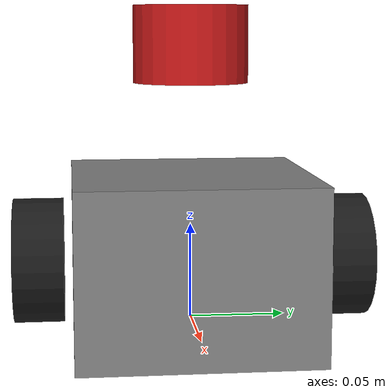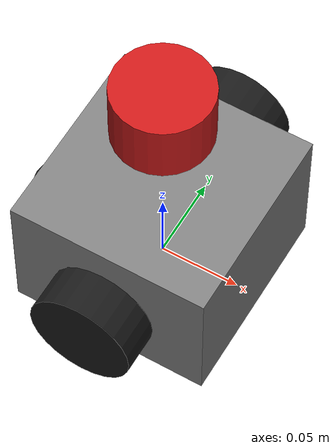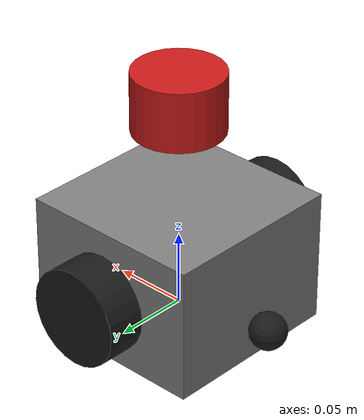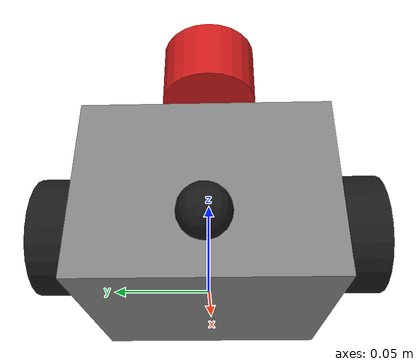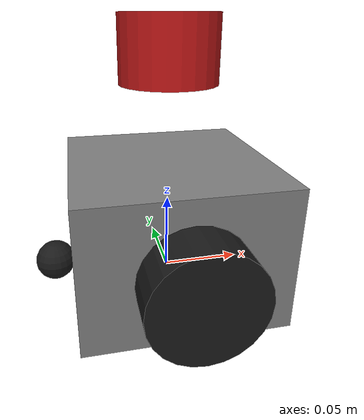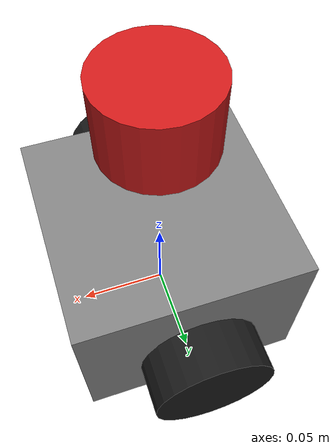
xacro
<?xml version="1.0"?>
<robot name="amr" xmlns:xacro="http://www.ros.org/wiki/xacro">

  <!-- ===== Parameter fisik (hasil pengukuran) ===== -->
  <xacro:property name="wheel_radius" value="0.0325"/>
  <xacro:property name="wheel_width" value="0.026"/>
  <xacro:property name="wheel_separation" value="0.16"/>
  <xacro:property name="chassis_length" value="0.125"/>
  <xacro:property name="chassis_width" value="0.125"/>
  <xacro:property name="chassis_height" value="0.09"/>
  <xacro:property name="laser_z_offset" value="0.1125"/>
  <xacro:property name="caster_x_offset" value="-0.075"/>

  <!-- ===== base_footprint: proyeksi robot di lantai (z=0) ===== -->
  <link name="base_footprint"/>

  <!-- ===== base_link: titik tengah sumbu roda ===== -->
  <link name="base_link">
    <visual>
      <origin xyz="0 0 0" rpy="0 0 0"/>
      <geometry>
        <box size="${chassis_length} ${chassis_width} ${chassis_height}"/>
      </geometry>
      <material name="grey">
        <color rgba="0.5 0.5 0.5 1"/>
      </material>
    </visual>
    <collision>
      <origin xyz="0 0 0" rpy="0 0 0"/>
      <geometry>
        <box size="${chassis_length} ${chassis_width} ${chassis_height}"/>
      </geometry>
    </collision>
    <inertial>
      <mass value="1.5"/>
      <inertia ixx="0.01" ixy="0" ixz="0" iyy="0.01" iyz="0" izz="0.01"/>
    </inertial>
  </link>

  <joint name="base_footprint_joint" type="fixed">
    <parent link="base_footprint"/>
    <child link="base_link"/>
    <origin xyz="0 0 ${wheel_radius}" rpy="0 0 0"/>
  </joint>

  <!-- ===== Roda kiri ===== -->
  <link name="left_wheel_link">
    <visual>
      <origin xyz="0 0 0" rpy="1.5708 0 0"/>
      <geometry>
        <cylinder radius="${wheel_radius}" length="${wheel_width}"/>
      </geometry>
      <material name="black">
        <color rgba="0.1 0.1 0.1 1"/>
      </material>
    </visual>
    <collision>
      <origin xyz="0 0 0" rpy="1.5708 0 0"/>
      <geometry>
        <cylinder radius="${wheel_radius}" length="${wheel_width}"/>
      </geometry>
    </collision>
    <inertial>
      <mass value="0.1"/>
      <inertia ixx="0.0001" ixy="0" ixz="0" iyy="0.0001" iyz="0" izz="0.0001"/>
    </inertial>
  </link>

  <joint name="left_wheel_joint" type="continuous">
    <parent link="base_link"/>
    <child link="left_wheel_link"/>
    <origin xyz="0 ${wheel_separation/2} 0" rpy="0 0 0"/>
    <axis xyz="0 1 0"/>
  </joint>

  <!-- ===== Roda kanan ===== -->
  <link name="right_wheel_link">
    <visual>
      <origin xyz="0 0 0" rpy="1.5708 0 0"/>
      <geometry>
        <cylinder radius="${wheel_radius}" length="${wheel_width}"/>
      </geometry>
      <material name="black"/>
    </visual>
    <collision>
      <origin xyz="0 0 0" rpy="1.5708 0 0"/>
      <geometry>
        <cylinder radius="${wheel_radius}" length="${wheel_width}"/>
      </geometry>
    </collision>
    <inertial>
      <mass value="0.1"/>
      <inertia ixx="0.0001" ixy="0" ixz="0" iyy="0.0001" iyz="0" izz="0.0001"/>
    </inertial>
  </link>

  <joint name="right_wheel_joint" type="continuous">
    <parent link="base_link"/>
    <child link="right_wheel_link"/>
    <origin xyz="0 ${-wheel_separation/2} 0" rpy="0 0 0"/>
    <axis xyz="0 1 0"/>
  </joint>

  <!-- ===== Caster wheel (belakang, passive/fixed untuk kesederhanaan) ===== -->
  <link name="caster_wheel_link">
    <visual>
      <geometry>
        <sphere radius="0.0125"/>
      </geometry>
      <material name="black"/>
    </visual>
    <collision>
      <geometry>
        <sphere radius="0.0125"/>
      </geometry>
    </collision>
    <inertial>
      <mass value="0.02"/>
      <inertia ixx="0.00001" ixy="0" ixz="0" iyy="0.00001" iyz="0" izz="0.00001"/>
    </inertial>
  </link>

  <joint name="caster_wheel_joint" type="fixed">
    <parent link="base_link"/>
    <child link="caster_wheel_link"/>
    <origin xyz="${caster_x_offset} 0 -0.02" rpy="0 0 0"/>
  </joint>

  <!-- ===== Lidar (RPLidar A1M8) ===== -->
  <link name="laser_link">
    <visual>
      <geometry>
        <cylinder radius="0.03" length="0.04"/>
      </geometry>
      <material name="red">
        <color rgba="0.8 0.1 0.1 1"/>
      </material>
    </visual>
    <collision>
      <geometry>
        <cylinder radius="0.03" length="0.04"/>
      </geometry>
    </collision>
    <inertial>
      <mass value="0.15"/>
      <inertia ixx="0.0001" ixy="0" ixz="0" iyy="0.0001" iyz="0" izz="0.0001"/>
    </inertial>
  </link>

  <joint name="laser_joint" type="fixed">
    <parent link="base_link"/>
    <child link="laser_link"/>
    <origin xyz="0 0 ${laser_z_offset}" rpy="0 0 0"/>
  </joint>

</robot>
